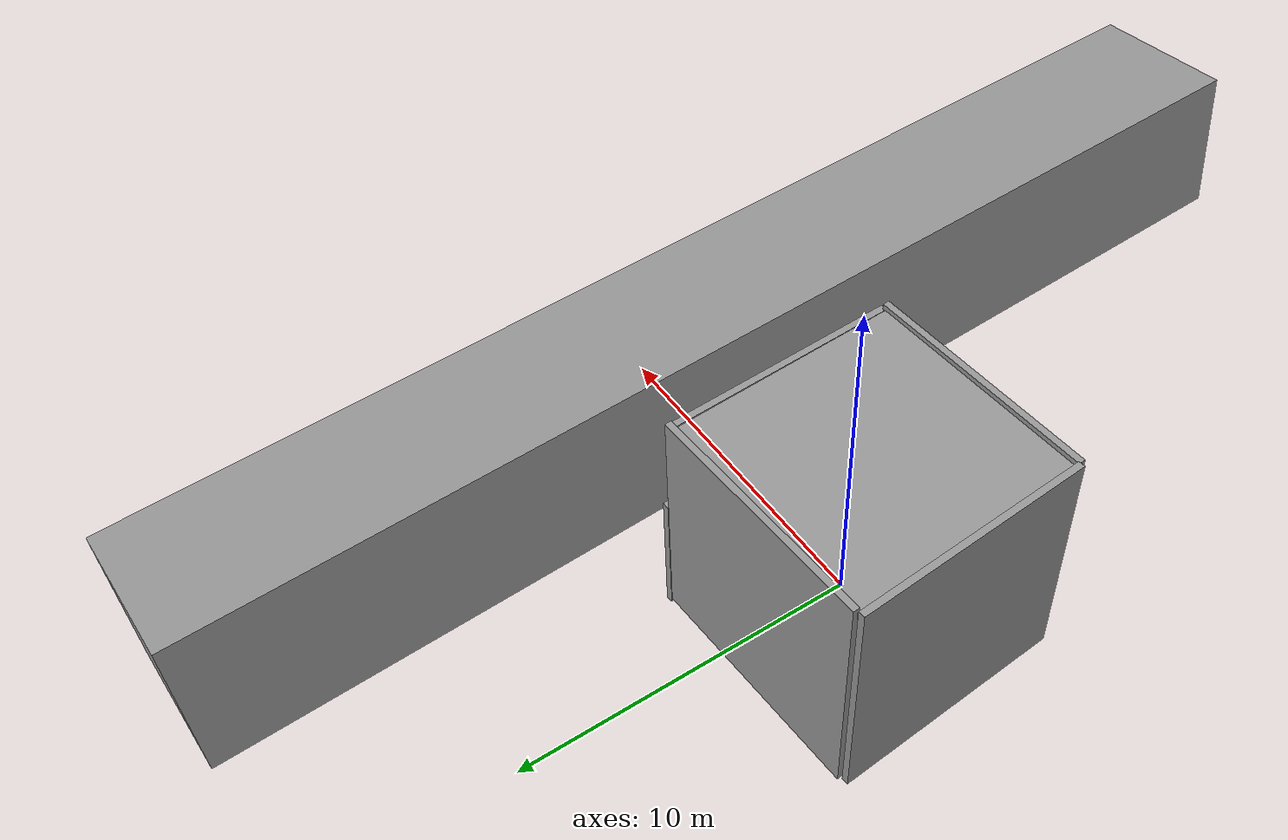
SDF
<sdf version="1.7">
 <world name="default">
  <light name="sun" type="directional">
   <pose>0 0 10 0 -0 0</pose>
   <diffuse>0.8 0.8 0.8 1</diffuse>
   <specular>0.2 0.2 0.2 1</specular>
   <attenuation>
    <range>1000</range>
    <constant>0.9</constant>
    <linear>0.01</linear>
    <quadratic>0.001</quadratic>
   </attenuation>
   <direction>-0.5 0.1 -0.9</direction>
   <spot><inner_angle>0</inner_angle><outer_angle>0</outer_angle><falloff>0</falloff></spot>
  </light>
  <plugin name="ros_interface_plugin" filename="librotors_gazebo_ros_interface_plugin.so"/>
  <gravity>0 0 -9.8</gravity>
  <magnetic_field>6e-06 2.3e-05 -4.2e-05</magnetic_field>
  <atmosphere type="adiabatic"/>
  <physics type="ode">
   <max_step_size>0.001</max_step_size>
   <real_time_factor>2</real_time_factor>
   <real_time_update_rate>3000</real_time_update_rate>
  </physics>
  <scene><ambient>0.4 0.4 0.4 1</ambient><background>0.7 0.7 0.7 1</background><shadows>1</shadows></scene>
  <spherical_coordinates>
   <surface_model>EARTH_WGS84</surface_model>
   <latitude_deg>0</latitude_deg>
   <longitude_deg>0</longitude_deg>
   <elevation>0</elevation>
   <heading_deg>0</heading_deg>
  </spherical_coordinates>
  <model name="grey_wall">
   <static>1</static>
   <link name="link">
    <pose>0 0 0 0 -0 1.57</pose>
    <collision name="collision"><geometry><box><size>7 0.2 7</size></box></geometry></collision>
    <visual name="visual">
     <cast_shadows>0</cast_shadows>
     <geometry><box><size>7 0.2 7</size></box></geometry>
     <material>
      <script>
       <uri>model://grey_wall/materials/scripts</uri>
       <uri>model://grey_wall/materials/textures</uri>
       <name>vrc/grey_wall</name>
      </script>
     </material>
    </visual>
   </link>
   <pose>-4.21474 -0.21131 2.80388 0 -0 0.06614</pose>
  </model>
  <model name="grey_wall_clone">
   <static>1</static>
   <link name="link">
    <pose>0 0 0 0 -0 1.57</pose>
    <collision name="collision"><geometry><box><size>7 0.2 7</size></box></geometry></collision>
    <visual name="visual">
     <cast_shadows>0</cast_shadows>
     <geometry><box><size>7 0.2 7</size></box></geometry>
     <material>
      <script>
       <uri>model://grey_wall/materials/scripts</uri>
       <uri>model://grey_wall/materials/textures</uri>
       <name>vrc/grey_wall</name>
      </script>
     </material>
    </visual>
   </link>
   <pose>-0.45009 -3.58157 2.80388 0 -0 1.62041</pose>
  </model>
  <model name="grey_wall_clone_clone">
   <static>1</static>
   <link name="link">
    <pose>0 0 0 0 -0 1.57</pose>
    <collision name="collision"><geometry><box><size>7 0.2 7</size></box></geometry></collision>
    <visual name="visual">
     <cast_shadows>0</cast_shadows>
     <geometry><box><size>7 0.2 7</size></box></geometry>
     <material>
      <script>
       <uri>model://grey_wall/materials/scripts</uri>
       <uri>model://grey_wall/materials/textures</uri>
       <name>vrc/grey_wall</name>
      </script>
     </material>
    </visual>
   </link>
   <pose>-0.789169 3.46124 2.80388 0 -0 1.62041</pose>
  </model>
  <model name="grey_wall_0">
   <static>1</static>
   <link name="link">
    <pose>0 0 0 0 -0 1.57</pose>
    <collision name="collision"><geometry><box><size>7 0.2 3</size></box></geometry></collision>
    <visual name="visual">
     <cast_shadows>0</cast_shadows>
     <geometry><box><size>7 0.2 3</size></box></geometry>
     <material>
      <script>
       <uri>model://grey_wall/materials/scripts</uri>
       <uri>model://grey_wall/materials/textures</uri>
       <name>vrc/grey_wall</name>
      </script>
     </material>
    </visual>
   </link>
   <pose>2.8837 0.111936 4.63934 0 -0 0.05281</pose>
  </model>
  <model name="grey_wall_1">
   <static>1</static>
   <link name="link">
    <pose>0 0 0 0 -0 1.57</pose>
    <collision name="collision"><geometry><box><size>2 0.2 4</size></box></geometry></collision>
    <visual name="visual">
     <cast_shadows>0</cast_shadows>
     <geometry><box><size>2 0.2 4</size></box></geometry>
     <material>
      <script>
       <uri>model://grey_wall/materials/scripts</uri>
       <uri>model://grey_wall/materials/textures</uri>
       <name>vrc/grey_wall</name>
      </script>
     </material>
    </visual>
   </link>
   <pose>2.92834 -2.58106 1.18435 0 -0 0.04294</pose>
  </model>
  <model name="grey_wall_1_clone">
   <static>1</static>
   <link name="link">
    <pose>0 0 0 0 -0 1.57</pose>
    <collision name="collision"><geometry><box><size>2 0.2 4</size></box></geometry></collision>
    <visual name="visual">
     <cast_shadows>0</cast_shadows>
     <geometry><box><size>2 0.2 4</size></box></geometry>
     <material>
      <script>
       <uri>model://grey_wall/materials/scripts</uri>
       <uri>model://grey_wall/materials/textures</uri>
       <name>vrc/grey_wall</name>
      </script>
     </material>
    </visual>
   </link>
   <pose>2.84535 2.76369 1.18435 0 -0 0.06626</pose>
  </model>
  <model name="grey_wall_2">
   <static>1</static>
   <link name="link">
    <pose>0 0 0 1.57 -0 1.57</pose>
    <collision name="collision"><geometry><box><size>7 0.2 7</size></box></geometry></collision>
    <visual name="visual">
     <cast_shadows>0</cast_shadows>
     <geometry><box><size>7 0.2 7</size></box></geometry>
     <material>
      <script>
       <uri>model://grey_wall/materials/scripts</uri>
       <uri>model://grey_wall/materials/textures</uri>
       <name>vrc/grey_wall</name>
      </script>
     </material>
    </visual>
   </link>
   <pose>-0.748455 -0.059649 6.04997 0 -0 0.0551</pose>
  </model>
  <model name="unit_box">
   <pose>5.59777 -0.118114 4.64103 -0.036704 0.076322 0.020139</pose>
   <link name="link">
    <inertial>
     <mass>1</mass>
     <inertia>
      <ixx>0.166667</ixx>
      <ixy>0</ixy>
      <ixz>0</ixz>
      <iyy>0.166667</iyy>
      <iyz>0</iyz>
      <izz>0.166667</izz>
     </inertia>
    </inertial>
    <collision name="collision"><geometry><box><size>4.25188 32.8768 4.31698</size></box></geometry></collision>
    <visual name="visual">
     <geometry><box><size>4.25188 32.8768 4.31698</size></box></geometry>
     <material>
      <script><name>Gazebo/Grey</name><uri>file://media/materials/scripts/gazebo.material</uri></script>
     </material>
    </visual>
   </link>
  </model>
 </world>
</sdf>
